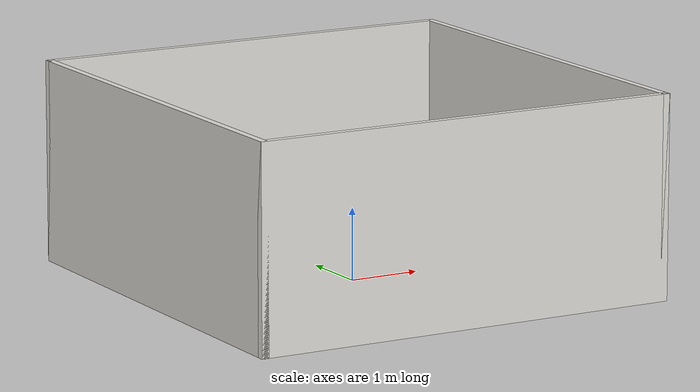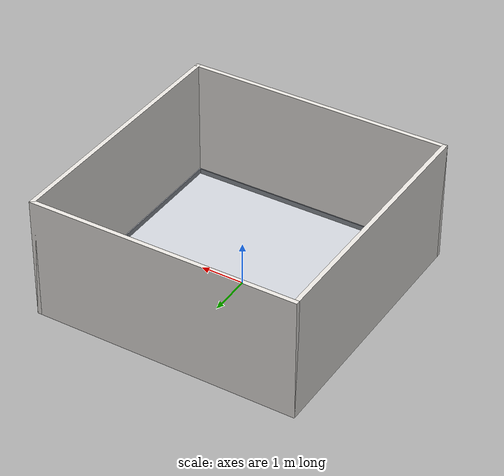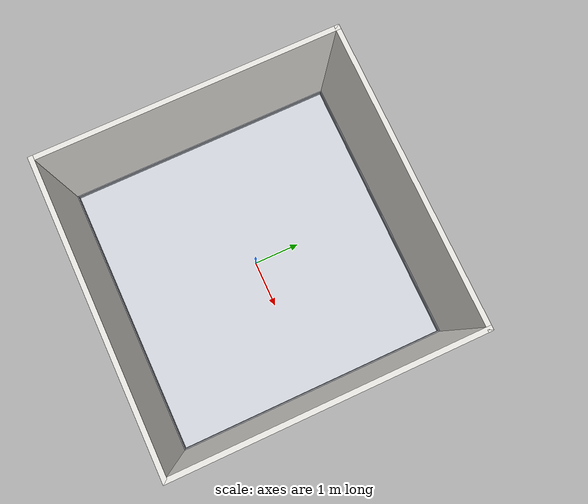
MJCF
<!-- 6 x 6 m room, 2.8 m ceiling, primitives and built-in textures only. Floor z = 0, +x east. -->
<mujoco model="flight_room">
  <visual>
    <quality shadowsize="8192" offsamples="8"/>
    <map znear="0.05" zfar="30" shadowclip="0.5" shadowscale="0.7"/>
    <headlight ambient="0.40 0.40 0.43" diffuse="0.0 0.0 0.0" specular="0.0 0.0 0.0"/>
  </visual>

  <asset>
    <texture name="sky" type="skybox" builtin="gradient"
             rgb1="0.62 0.70 0.80" rgb2="0.86 0.90 0.94" width="256" height="256"/>
    <texture name="floor_tex" type="2d" builtin="checker"
             rgb1="0.88 0.89 0.91" rgb2="0.74 0.76 0.79" width="512" height="512"/>
    <material name="floor_mat" texture="floor_tex" texrepeat="6 6" specular="0.0" shininess="0.0"
              reflectance="0.0"/>
    <material name="wall_mat" rgba="0.90 0.89 0.87 1" specular="0.05" shininess="0.05"/>
    <material name="trim_mat" rgba="0.55 0.57 0.60 1" specular="0.1" shininess="0.1"/>
  </asset>

  <worldbody>
    <!-- Directional, so the floor is lit evenly; one shadow caster only. -->
    <light name="key"   directional="true" dir="-0.45 -0.35 -1"  diffuse="0.42 0.42 0.41" specular="0 0 0" castshadow="true"/>
    <light name="fill_a" directional="true" dir=" 0.55 -0.25 -1" diffuse="0.16 0.16 0.17" specular="0 0 0" castshadow="false"/>
    <light name="fill_b" directional="true" dir=" 0.10  0.60 -1" diffuse="0.13 0.13 0.14" specular="0 0 0" castshadow="false"/>

    <geom name="floor" type="plane" size="3.0 3.0 0.05" material="floor_mat"
          friction="1.0 0.005 0.0001"/>
    <geom name="wall_north" type="box" pos=" 0.0  3.0 1.4" size="3.05 0.05 1.4" material="wall_mat"/>
    <geom name="wall_south" type="box" pos=" 0.0 -3.0 1.4" size="3.05 0.05 1.4" material="wall_mat"/>
    <geom name="wall_east"  type="box" pos=" 3.0  0.0 1.4" size="0.05 3.05 1.4" material="wall_mat"/>
    <geom name="wall_west"  type="box" pos="-3.0  0.0 1.4" size="0.05 3.05 1.4" material="wall_mat"/>
    <geom name="trim_north" type="box" pos=" 0.0  2.94 0.06" size="3.0 0.012 0.06" material="trim_mat" contype="0" conaffinity="0"/>
    <geom name="trim_south" type="box" pos=" 0.0 -2.94 0.06" size="3.0 0.012 0.06" material="trim_mat" contype="0" conaffinity="0"/>
    <geom name="trim_east"  type="box" pos=" 2.94  0.0 0.06" size="0.012 3.0 0.06" material="trim_mat" contype="0" conaffinity="0"/>
    <geom name="trim_west"  type="box" pos="-2.94  0.0 0.06" size="0.012 3.0 0.06" material="trim_mat" contype="0" conaffinity="0"/>
    <!-- Fixed camera for `roqsim render --camera room`; framing identical across configurations. -->
    <camera name="room" pos="2.7 -2.7 2.3" xyaxes="0.7071 0.7071 -0.0000 -0.2279 0.2279 0.9466"/>
  </worldbody>
</mujoco>
